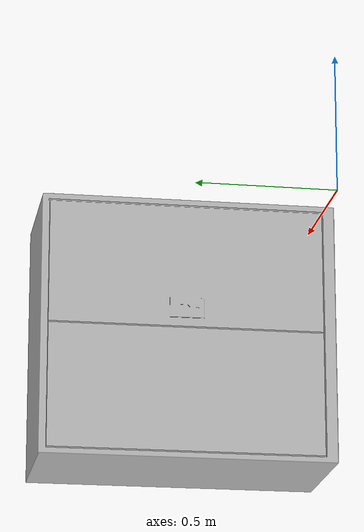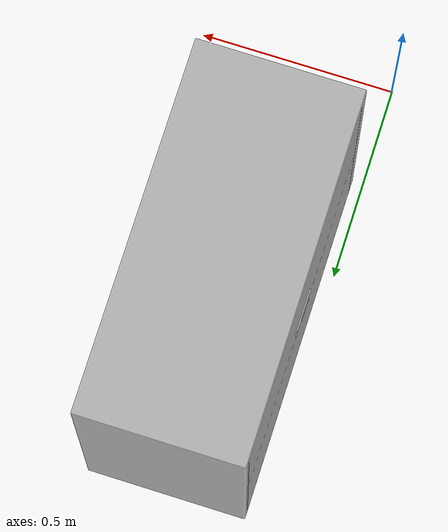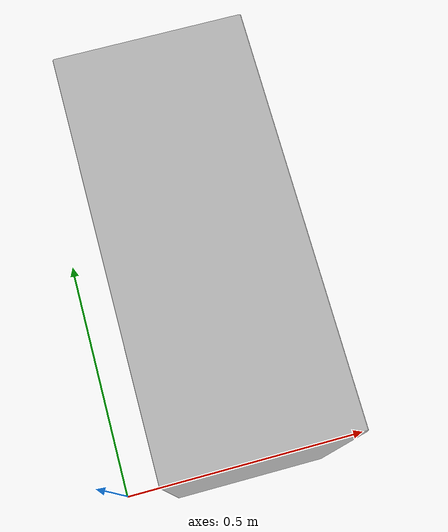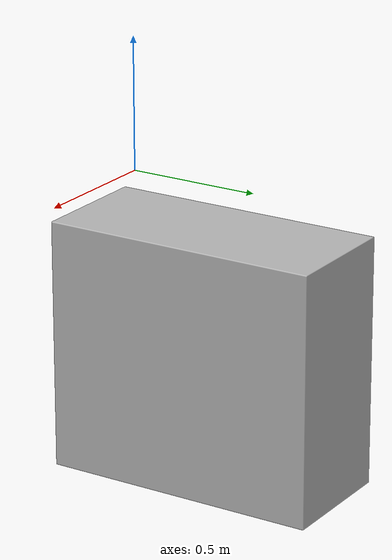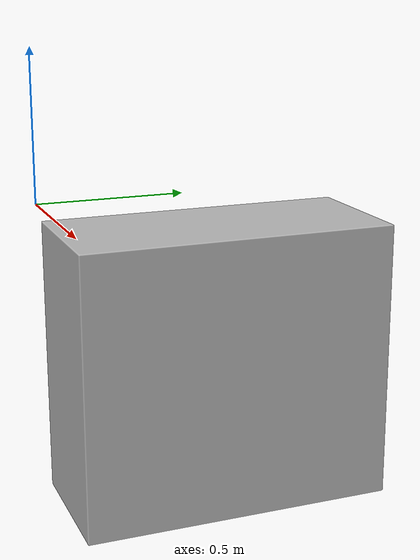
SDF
<?xml version="1.0" ?>
<sdf version="1.6">
  <model name="safe_storage">
    <pose>0 0 0 0 0 0</pose>
    <static>true</static>
    <link name="body">
      <visual name="visual">
        <geometry>
          <mesh><uri>model://safe_storage/meshes/safe_storage.dae</uri></mesh>
        </geometry>
      </visual>
      <collision name="collision">
        <geometry>
          <mesh><uri>model://safe_storage/meshes/safe_storage.dae</uri></mesh>
        </geometry>
      </collision>
    </link>
  </model>
</sdf>
